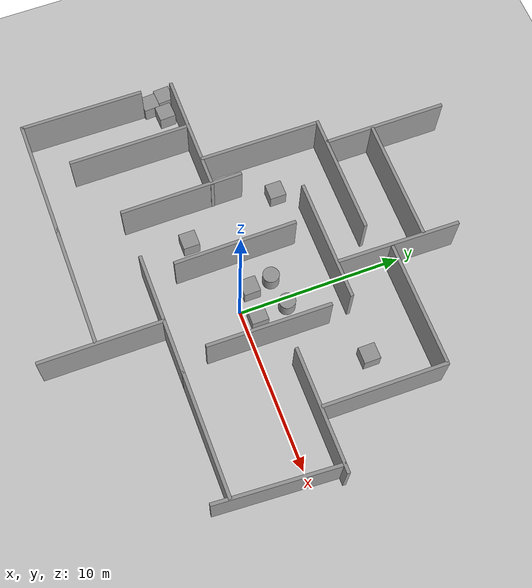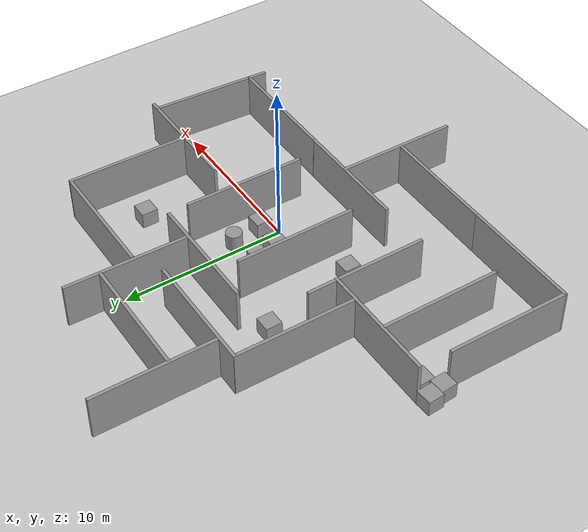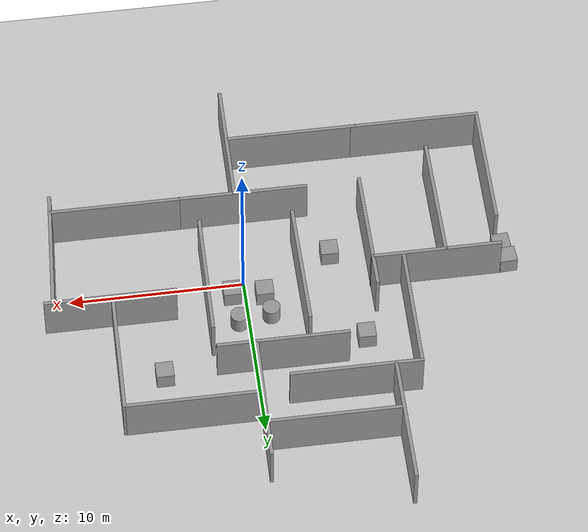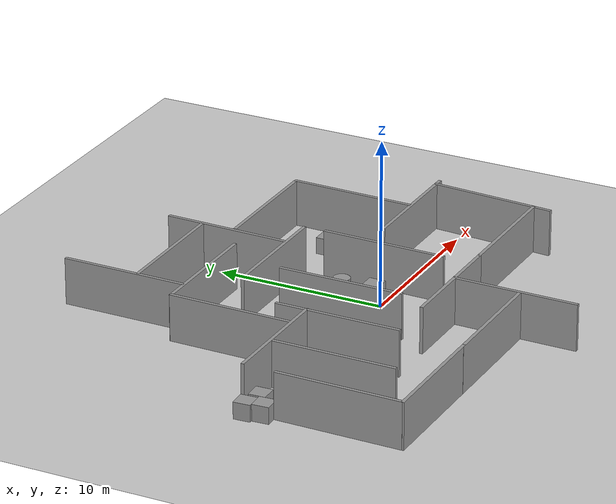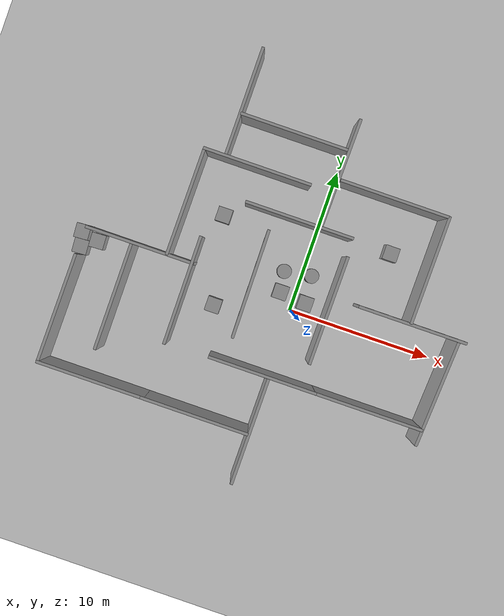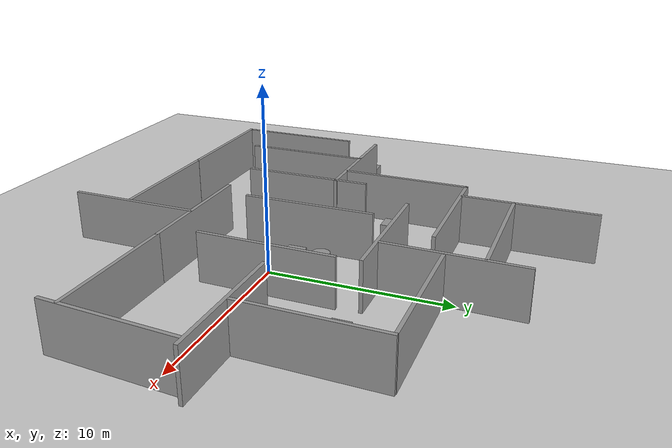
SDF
<sdf version="1.6">
 <world name="default">
  <light name="sun" type="directional">
   <pose>0 0 10 0 -0 0</pose>
   <diffuse>0.8 0.8 0.8 1</diffuse>
   <specular>0.1 0.1 0.1 1</specular>
   <attenuation>
    <range>1000</range>
    <constant>0.9</constant>
    <linear>0.01</linear>
    <quadratic>0.001</quadratic>
   </attenuation>
   <direction>-0.5 0.5 -1</direction>
  </light>
  <model name="ground_plane">
   <static>1</static>
   <link name="link">
    <collision name="collision">
     <geometry><plane><normal>0 0 1</normal><size>100 100</size></plane></geometry>
     <surface><friction><ode><mu>100</mu><mu2>50</mu2></ode></friction></surface>
    </collision>
    <visual name="visual">
     <cast_shadows>0</cast_shadows>
     <geometry><plane><normal>0 0 1</normal><size>100 100</size></plane></geometry>
     <material>
      <script><uri>file://media/materials/scripts/gazebo.material</uri><name>Gazebo/Grey</name></script>
     </material>
    </visual>
   </link>
  </model>
  <gravity>0 0 -9.8</gravity>
  <magnetic_field>6e-06 2.3e-05 -4.2e-05</magnetic_field>
  <atmosphere type="adiabatic"/>
  <physics name="default_physics" default="0" type="ode">
   <max_step_size>0.001</max_step_size>
   <real_time_factor>1</real_time_factor>
   <real_time_update_rate>1000</real_time_update_rate>
  </physics>
  <scene><ambient>0.4 0.4 0.4 1</ambient><background>0.7 0.7 0.7 1</background><shadows>1</shadows></scene>
  <spherical_coordinates>
   <surface_model>EARTH_WGS84</surface_model>
   <latitude_deg>0</latitude_deg>
   <longitude_deg>0</longitude_deg>
   <elevation>0</elevation>
   <heading_deg>0</heading_deg>
  </spherical_coordinates>
  <model name="grey_wall">
   <static>1</static>
   <link name="link">
    <pose>0 0 1.4 0 -0 0</pose>
    <collision name="collision"><geometry><box><size>7.5 0.2 2.8</size></box></geometry></collision>
    <visual name="visual">
     <cast_shadows>0</cast_shadows>
     <geometry><box><size>7.5 0.2 2.8</size></box></geometry>
     <material>
      <script>
       <uri>model://grey_wall/materials/scripts</uri>
       <uri>model://grey_wall/materials/textures</uri>
       <name>vrc/grey_wall</name>
      </script>
     </material>
    </visual>
   </link>
   <pose>-0.510523 -4.51937 0 0 -0 0</pose>
  </model>
  <model name="unit_box_0">
   <pose>-1.07697 0.999232 0.499995 1e-05 -0 0</pose>
   <link name="link">
    <inertial>
     <mass>1</mass>
     <inertia>
      <ixx>0.166667</ixx>
      <ixy>0</ixy>
      <ixz>0</ixz>
      <iyy>0.166667</iyy>
      <iyz>0</iyz>
      <izz>0.166667</izz>
     </inertia>
    </inertial>
    <collision name="collision"><geometry><box><size>1 1 1</size></box></geometry></collision>
    <visual name="visual">
     <geometry><box><size>1 1 1</size></box></geometry>
     <material>
      <script><name>Gazebo/Grey</name><uri>file://media/materials/scripts/gazebo.material</uri></script>
     </material>
    </visual>
   </link>
  </model>
  <model name="unit_cylinder_0">
   <pose>-1.29256 2.40923 0.499999 2e-06 -2e-06 -0</pose>
   <link name="link">
    <inertial>
     <mass>1</mass>
     <inertia><ixx>0.145833</ixx><ixy>0</ixy><ixz>0</ixz><iyy>0.145833</iyy><iyz>0</iyz><izz>0.125</izz></inertia>
    </inertial>
    <collision name="collision">
     <geometry><cylinder><radius>0.5</radius><length>1</length></cylinder></geometry>
    </collision>
    <visual name="visual">
     <geometry><cylinder><radius>0.5</radius><length>1</length></cylinder></geometry>
     <material>
      <script><name>Gazebo/Grey</name><uri>file://media/materials/scripts/gazebo.material</uri></script>
     </material>
    </visual>
   </link>
  </model>
  <model name="unit_box_1">
   <pose>0.762026 0.804925 0.499995 0 1e-05 0</pose>
   <link name="link">
    <inertial>
     <mass>1</mass>
     <inertia>
      <ixx>0.166667</ixx>
      <ixy>0</ixy>
      <ixz>0</ixz>
      <iyy>0.166667</iyy>
      <iyz>0</iyz>
      <izz>0.166667</izz>
     </inertia>
    </inertial>
    <collision name="collision"><geometry><box><size>1 1 1</size></box></geometry></collision>
    <visual name="visual">
     <geometry><box><size>1 1 1</size></box></geometry>
     <material>
      <script><name>Gazebo/Grey</name><uri>file://media/materials/scripts/gazebo.material</uri></script>
     </material>
    </visual>
   </link>
  </model>
  <model name="unit_cylinder_1">
   <pose>0.567228 2.70326 0.499994 -3e-06 -1e-06 -0</pose>
   <link name="link">
    <inertial>
     <mass>1</mass>
     <inertia><ixx>0.145833</ixx><ixy>0</ixy><ixz>0</ixz><iyy>0.145833</iyy><iyz>0</iyz><izz>0.125</izz></inertia>
    </inertial>
    <collision name="collision">
     <geometry><cylinder><radius>0.5</radius><length>1</length></cylinder></geometry>
    </collision>
    <visual name="visual">
     <geometry><cylinder><radius>0.5</radius><length>1</length></cylinder></geometry>
     <material>
      <script><name>Gazebo/Grey</name><uri>file://media/materials/scripts/gazebo.material</uri></script>
     </material>
    </visual>
   </link>
  </model>
  <model name="grey_wall_0">
   <static>1</static>
   <link name="link">
    <pose>0 0 1.4 0 -0 0</pose>
    <collision name="collision"><geometry><box><size>7.5 0.2 2.8</size></box></geometry></collision>
    <visual name="visual">
     <cast_shadows>0</cast_shadows>
     <geometry><box><size>7.5 0.2 2.8</size></box></geometry>
     <material>
      <script>
       <uri>model://grey_wall/materials/scripts</uri>
       <uri>model://grey_wall/materials/textures</uri>
       <name>vrc/grey_wall</name>
      </script>
     </material>
    </visual>
   </link>
   <pose>-1.51869 5.89133 0 0 -0 0</pose>
  </model>
  <model name="grey_wall_1">
   <static>1</static>
   <link name="link">
    <pose>0 0 1.4 0 -0 0</pose>
    <collision name="collision"><geometry><box><size>7.5 0.2 2.8</size></box></geometry></collision>
    <visual name="visual">
     <cast_shadows>0</cast_shadows>
     <geometry><box><size>7.5 0.2 2.8</size></box></geometry>
     <material>
      <script>
       <uri>model://grey_wall/materials/scripts</uri>
       <uri>model://grey_wall/materials/textures</uri>
       <name>vrc/grey_wall</name>
      </script>
     </material>
    </visual>
   </link>
   <pose>3.92386 9.25262 0 0 -0 0</pose>
  </model>
  <model name="grey_wall_2">
   <static>1</static>
   <link name="link">
    <pose>0 0 1.4 0 -0 0</pose>
    <collision name="collision"><geometry><box><size>7.5 0.2 2.8</size></box></geometry></collision>
    <visual name="visual">
     <cast_shadows>0</cast_shadows>
     <geometry><box><size>7.5 0.2 2.8</size></box></geometry>
     <material>
      <script>
       <uri>model://grey_wall/materials/scripts</uri>
       <uri>model://grey_wall/materials/textures</uri>
       <name>vrc/grey_wall</name>
      </script>
     </material>
    </visual>
   </link>
   <pose>0.050327 9.70392 0 0 -0 1.55197</pose>
  </model>
  <model name="grey_wall_3">
   <static>1</static>
   <link name="link">
    <pose>0 0 1.4 0 -0 0</pose>
    <collision name="collision"><geometry><box><size>7.5 0.2 2.8</size></box></geometry></collision>
    <visual name="visual">
     <cast_shadows>0</cast_shadows>
     <geometry><box><size>7.5 0.2 2.8</size></box></geometry>
     <material>
      <script>
       <uri>model://grey_wall/materials/scripts</uri>
       <uri>model://grey_wall/materials/textures</uri>
       <name>vrc/grey_wall</name>
      </script>
     </material>
    </visual>
   </link>
   <pose>7.66381 5.57921 0 0 -0 1.55532</pose>
  </model>
  <model name="grey_wall_4">
   <static>1</static>
   <link name="link">
    <pose>0 0 1.4 0 -0 0</pose>
    <collision name="collision"><geometry><box><size>7.5 0.2 2.8</size></box></geometry></collision>
    <visual name="visual">
     <cast_shadows>0</cast_shadows>
     <geometry><box><size>7.5 0.2 2.8</size></box></geometry>
     <material>
      <script>
       <uri>model://grey_wall/materials/scripts</uri>
       <uri>model://grey_wall/materials/textures</uri>
       <name>vrc/grey_wall</name>
      </script>
     </material>
    </visual>
   </link>
   <pose>7.74445 1.80371 0 0 -0 0</pose>
  </model>
  <model name="grey_wall_5">
   <static>1</static>
   <link name="link">
    <pose>0 0 1.4 0 -0 0</pose>
    <collision name="collision"><geometry><box><size>7.5 0.2 2.8</size></box></geometry></collision>
    <visual name="visual">
     <cast_shadows>0</cast_shadows>
     <geometry><box><size>7.5 0.2 2.8</size></box></geometry>
     <material>
      <script>
       <uri>model://grey_wall/materials/scripts</uri>
       <uri>model://grey_wall/materials/textures</uri>
       <name>vrc/grey_wall</name>
      </script>
     </material>
    </visual>
   </link>
   <pose>6.85378 -4.51755 0 0 -0 0</pose>
  </model>
  <model name="grey_wall_6">
   <static>1</static>
   <link name="link">
    <pose>0 0 1.4 0 -0 0</pose>
    <collision name="collision"><geometry><box><size>7.5 0.2 2.8</size></box></geometry></collision>
    <visual name="visual">
     <cast_shadows>0</cast_shadows>
     <geometry><box><size>7.5 0.2 2.8</size></box></geometry>
     <material>
      <script>
       <uri>model://grey_wall/materials/scripts</uri>
       <uri>model://grey_wall/materials/textures</uri>
       <name>vrc/grey_wall</name>
      </script>
     </material>
    </visual>
   </link>
   <pose>10.7291 -1.88231 0 0 -0 1.50774</pose>
  </model>
  <model name="grey_wall_7">
   <static>1</static>
   <link name="link">
    <pose>0 0 1.4 0 -0 0</pose>
    <collision name="collision"><geometry><box><size>7.5 0.2 2.8</size></box></geometry></collision>
    <visual name="visual">
     <cast_shadows>0</cast_shadows>
     <geometry><box><size>7.5 0.2 2.8</size></box></geometry>
     <material>
      <script>
       <uri>model://grey_wall/materials/scripts</uri>
       <uri>model://grey_wall/materials/textures</uri>
       <name>vrc/grey_wall</name>
      </script>
     </material>
    </visual>
   </link>
   <pose>2.2205 0.906431 0 0 -0 1.55758</pose>
  </model>
  <model name="grey_wall_8">
   <static>1</static>
   <link name="link">
    <pose>0 0 1.4 0 -0 0</pose>
    <collision name="collision"><geometry><box><size>7.5 0.2 2.8</size></box></geometry></collision>
    <visual name="visual">
     <cast_shadows>0</cast_shadows>
     <geometry><box><size>7.5 0.2 2.8</size></box></geometry>
     <material>
      <script>
       <uri>model://grey_wall/materials/scripts</uri>
       <uri>model://grey_wall/materials/textures</uri>
       <name>vrc/grey_wall</name>
      </script>
     </material>
    </visual>
   </link>
   <pose>-3.18349 0.89341 0 0 -0 1.57535</pose>
  </model>
  <model name="grey_wall_9">
   <static>1</static>
   <link name="link">
    <pose>0 0 1.4 0 -0 0</pose>
    <collision name="collision"><geometry><box><size>7.5 0.2 2.8</size></box></geometry></collision>
    <visual name="visual">
     <cast_shadows>0</cast_shadows>
     <geometry><box><size>7.5 0.2 2.8</size></box></geometry>
     <material>
      <script>
       <uri>model://grey_wall/materials/scripts</uri>
       <uri>model://grey_wall/materials/textures</uri>
       <name>vrc/grey_wall</name>
      </script>
     </material>
    </visual>
   </link>
   <pose>-7.28441 -0.946687 0 0 -0 1.57134</pose>
  </model>
  <model name="grey_wall_10">
   <static>1</static>
   <link name="link">
    <pose>0 0 1.4 0 -0 0</pose>
    <collision name="collision"><geometry><box><size>7.5 0.2 2.8</size></box></geometry></collision>
    <visual name="visual">
     <cast_shadows>0</cast_shadows>
     <geometry><box><size>7.5 0.2 2.8</size></box></geometry>
     <material>
      <script>
       <uri>model://grey_wall/materials/scripts</uri>
       <uri>model://grey_wall/materials/textures</uri>
       <name>vrc/grey_wall</name>
      </script>
     </material>
    </visual>
   </link>
   <pose>-5.29214 8.31772 0 0 -0 0</pose>
  </model>
  <model name="grey_wall_11">
   <static>1</static>
   <link name="link">
    <pose>0 0 1.4 0 -0 0</pose>
    <collision name="collision"><geometry><box><size>7.5 0.2 2.8</size></box></geometry></collision>
    <visual name="visual">
     <cast_shadows>0</cast_shadows>
     <geometry><box><size>7.5 0.2 2.8</size></box></geometry>
     <material>
      <script>
       <uri>model://grey_wall/materials/scripts</uri>
       <uri>model://grey_wall/materials/textures</uri>
       <name>vrc/grey_wall</name>
      </script>
     </material>
    </visual>
   </link>
   <pose>-8.98354 4.64749 0 0 -0 1.56072</pose>
  </model>
  <model name="grey_wall_12">
   <static>1</static>
   <link name="link">
    <pose>0 0 1.4 0 -0 0</pose>
    <collision name="collision"><geometry><box><size>7.5 0.2 2.8</size></box></geometry></collision>
    <visual name="visual">
     <cast_shadows>0</cast_shadows>
     <geometry><box><size>7.5 0.2 2.8</size></box></geometry>
     <material>
      <script>
       <uri>model://grey_wall/materials/scripts</uri>
       <uri>model://grey_wall/materials/textures</uri>
       <name>vrc/grey_wall</name>
      </script>
     </material>
    </visual>
   </link>
   <pose>-10.9075 0.929825 0 0 -0 0</pose>
  </model>
  <model name="grey_wall_13">
   <static>1</static>
   <link name="link">
    <pose>0 0 1.4 0 -0 0</pose>
    <collision name="collision"><geometry><box><size>7.5 0.2 2.8</size></box></geometry></collision>
    <visual name="visual">
     <cast_shadows>0</cast_shadows>
     <geometry><box><size>7.5 0.2 2.8</size></box></geometry>
     <material>
      <script>
       <uri>model://grey_wall/materials/scripts</uri>
       <uri>model://grey_wall/materials/textures</uri>
       <name>vrc/grey_wall</name>
      </script>
     </material>
    </visual>
   </link>
   <pose>-3.70647 11.2554 0 0 -0 0</pose>
  </model>
  <model name="grey_wall_14">
   <static>1</static>
   <link name="link">
    <pose>0 0 1.4 0 -0 0</pose>
    <collision name="collision"><geometry><box><size>7.5 0.2 2.8</size></box></geometry></collision>
    <visual name="visual">
     <cast_shadows>0</cast_shadows>
     <geometry><box><size>7.5 0.2 2.8</size></box></geometry>
     <material>
      <script>
       <uri>model://grey_wall/materials/scripts</uri>
       <uri>model://grey_wall/materials/textures</uri>
       <name>vrc/grey_wall</name>
      </script>
     </material>
    </visual>
   </link>
   <pose>-7.47919 12.0761 0 0 0 -1.57575</pose>
  </model>
  <model name="grey_wall_15">
   <static>1</static>
   <link name="link">
    <pose>0 0 1.4 0 -0 0</pose>
    <collision name="collision"><geometry><box><size>7.5 0.2 2.8</size></box></geometry></collision>
    <visual name="visual">
     <cast_shadows>0</cast_shadows>
     <geometry><box><size>7.5 0.2 2.8</size></box></geometry>
     <material>
      <script>
       <uri>model://grey_wall/materials/scripts</uri>
       <uri>model://grey_wall/materials/textures</uri>
       <name>vrc/grey_wall</name>
      </script>
     </material>
    </visual>
   </link>
   <pose>-3.87446 -8.49136 0 0 -0 0</pose>
  </model>
  <model name="grey_wall_16">
   <static>1</static>
   <link name="link">
    <pose>0 0 1.4 0 -0 0</pose>
    <collision name="collision"><geometry><box><size>7.5 0.2 2.8</size></box></geometry></collision>
    <visual name="visual">
     <cast_shadows>0</cast_shadows>
     <geometry><box><size>7.5 0.2 2.8</size></box></geometry>
     <material>
      <script>
       <uri>model://grey_wall/materials/scripts</uri>
       <uri>model://grey_wall/materials/textures</uri>
       <name>vrc/grey_wall</name>
      </script>
     </material>
    </visual>
   </link>
   <pose>-0.076768 -8.18121 0 0 -0 1.56312</pose>
  </model>
  <model name="grey_wall_17">
   <static>1</static>
   <link name="link">
    <pose>0 0 1.4 0 -0 0</pose>
    <collision name="collision"><geometry><box><size>7.5 0.2 2.8</size></box></geometry></collision>
    <visual name="visual">
     <cast_shadows>0</cast_shadows>
     <geometry><box><size>7.5 0.2 2.8</size></box></geometry>
     <material>
      <script>
       <uri>model://grey_wall/materials/scripts</uri>
       <uri>model://grey_wall/materials/textures</uri>
       <name>vrc/grey_wall</name>
      </script>
     </material>
    </visual>
   </link>
   <pose>-11.4512 -2.75988 0 0 0 -1.57296</pose>
  </model>
  <model name="grey_wall_18">
   <static>1</static>
   <link name="link">
    <pose>0 0 1.4 0 -0 0</pose>
    <collision name="collision"><geometry><box><size>7.5 0.2 2.8</size></box></geometry></collision>
    <visual name="visual">
     <cast_shadows>0</cast_shadows>
     <geometry><box><size>7.5 0.2 2.8</size></box></geometry>
     <material>
      <script>
       <uri>model://grey_wall/materials/scripts</uri>
       <uri>model://grey_wall/materials/textures</uri>
       <name>vrc/grey_wall</name>
      </script>
     </material>
    </visual>
   </link>
   <pose>-11.0906 -8.4884 0 0 -0 0</pose>
  </model>
  <model name="grey_wall_19">
   <static>1</static>
   <link name="link">
    <pose>0 0 1.4 0 -0 0</pose>
    <collision name="collision"><geometry><box><size>7.5 0.2 2.8</size></box></geometry></collision>
    <visual name="visual">
     <cast_shadows>0</cast_shadows>
     <geometry><box><size>7.5 0.2 2.8</size></box></geometry>
     <material>
      <script>
       <uri>model://grey_wall/materials/scripts</uri>
       <uri>model://grey_wall/materials/textures</uri>
       <name>vrc/grey_wall</name>
      </script>
     </material>
    </visual>
   </link>
   <pose>-14.7099 -4.72655 0 0 0 -1.58036</pose>
  </model>
  <model name="unit_box_2">
   <pose>-14.9318 -0.484357 0.499995 0 1e-05 0.060161</pose>
   <link name="link">
    <inertial>
     <mass>1</mass>
     <inertia>
      <ixx>0.166667</ixx>
      <ixy>0</ixy>
      <ixz>0</ixz>
      <iyy>0.166667</iyy>
      <iyz>0</iyz>
      <izz>0.166667</izz>
     </inertia>
    </inertial>
    <collision name="collision"><geometry><box><size>1 1 1</size></box></geometry></collision>
    <visual name="visual">
     <geometry><box><size>1 1 1</size></box></geometry>
     <material>
      <script><name>Gazebo/Grey</name><uri>file://media/materials/scripts/gazebo.material</uri></script>
     </material>
    </visual>
   </link>
  </model>
  <model name="unit_box_3">
   <pose>-15.1433 0.505357 0.5 0 -0 0.059065</pose>
   <link name="link">
    <inertial>
     <mass>1</mass>
     <inertia>
      <ixx>0.166667</ixx>
      <ixy>0</ixy>
      <ixz>0</ixz>
      <iyy>0.166667</iyy>
      <iyz>0</iyz>
      <izz>0.166667</izz>
     </inertia>
    </inertial>
    <collision name="collision"><geometry><box><size>1 1 1</size></box></geometry></collision>
    <visual name="visual">
     <geometry><box><size>1 1 1</size></box></geometry>
     <material>
      <script><name>Gazebo/Grey</name><uri>file://media/materials/scripts/gazebo.material</uri></script>
     </material>
    </visual>
   </link>
  </model>
  <model name="unit_box_4">
   <pose>-13.9607 0.216274 0.499995 -1e-05 -0 0.041342</pose>
   <link name="link">
    <inertial>
     <mass>1</mass>
     <inertia>
      <ixx>0.166667</ixx>
      <ixy>0</ixy>
      <ixz>0</ixz>
      <iyy>0.166667</iyy>
      <iyz>0</iyz>
      <izz>0.166667</izz>
     </inertia>
    </inertial>
    <collision name="collision"><geometry><box><size>1 1 1</size></box></geometry></collision>
    <visual name="visual">
     <geometry><box><size>1 1 1</size></box></geometry>
     <material>
      <script><name>Gazebo/Grey</name><uri>file://media/materials/scripts/gazebo.material</uri></script>
     </material>
    </visual>
   </link>
  </model>
  <model name="unit_box_5">
   <pose>-5.10417 -1.32445 0.499995 0 1e-05 0</pose>
   <link name="link">
    <inertial>
     <mass>1</mass>
     <inertia>
      <ixx>0.166667</ixx>
      <ixy>0</ixy>
      <ixz>0</ixz>
      <iyy>0.166667</iyy>
      <iyz>0</iyz>
      <izz>0.166667</izz>
     </inertia>
    </inertial>
    <collision name="collision"><geometry><box><size>1 1 1</size></box></geometry></collision>
    <visual name="visual">
     <geometry><box><size>1 1 1</size></box></geometry>
     <material>
      <script><name>Gazebo/Grey</name><uri>file://media/materials/scripts/gazebo.material</uri></script>
     </material>
    </visual>
   </link>
  </model>
  <model name="unit_box_6">
   <pose>-6.41261 4.6769 0.499995 -1e-05 0 0</pose>
   <link name="link">
    <inertial>
     <mass>1</mass>
     <inertia>
      <ixx>0.166667</ixx>
      <ixy>0</ixy>
      <ixz>0</ixz>
      <iyy>0.166667</iyy>
      <iyz>0</iyz>
      <izz>0.166667</izz>
     </inertia>
    </inertial>
    <collision name="collision"><geometry><box><size>1 1 1</size></box></geometry></collision>
    <visual name="visual">
     <geometry><box><size>1 1 1</size></box></geometry>
     <material>
      <script><name>Gazebo/Grey</name><uri>file://media/materials/scripts/gazebo.material</uri></script>
     </material>
    </visual>
   </link>
  </model>
  <model name="unit_box_7">
   <pose>5.17432 5.89805 0.499995 0 1e-05 0</pose>
   <link name="link">
    <inertial>
     <mass>1</mass>
     <inertia>
      <ixx>0.166667</ixx>
      <ixy>0</ixy>
      <ixz>0</ixz>
      <iyy>0.166667</iyy>
      <iyz>0</iyz>
      <izz>0.166667</izz>
     </inertia>
    </inertial>
    <collision name="collision"><geometry><box><size>1 1 1</size></box></geometry></collision>
    <visual name="visual">
     <geometry><box><size>1 1 1</size></box></geometry>
     <material>
      <script><name>Gazebo/Grey</name><uri>file://media/materials/scripts/gazebo.material</uri></script>
     </material>
    </visual>
   </link>
  </model>
 </world>
</sdf>
